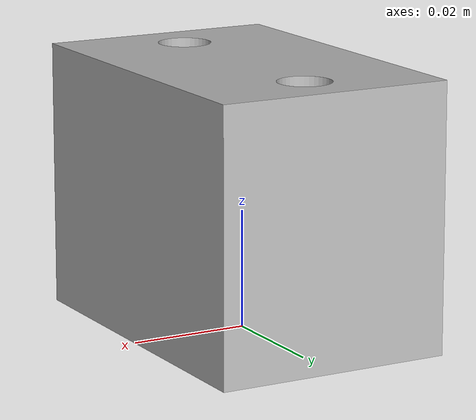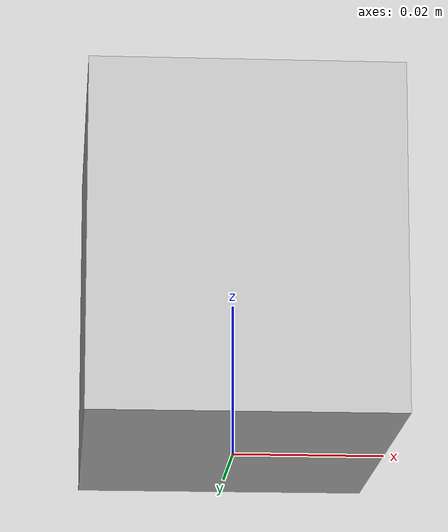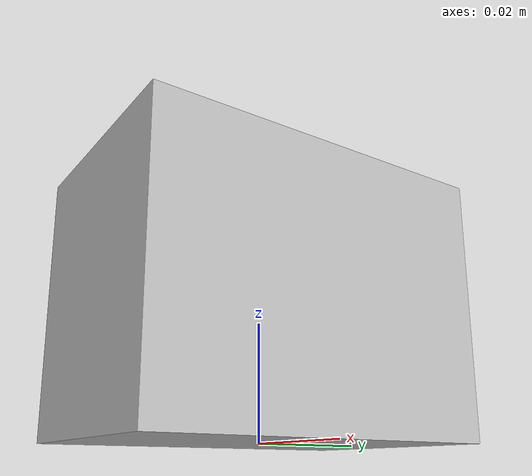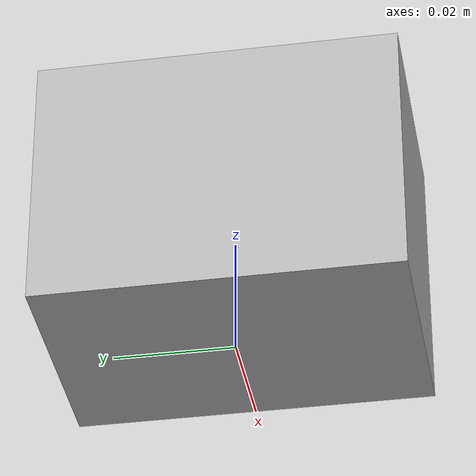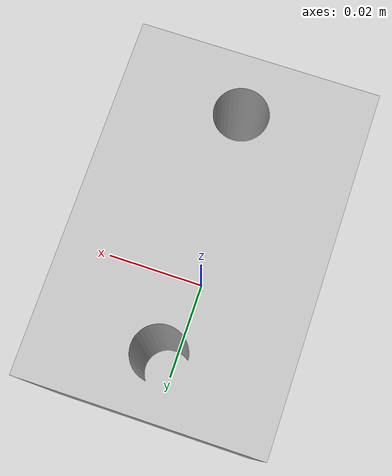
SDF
<?xml version='1.0'?>
<sdf version='1.6'>
  <model name="Bolt_holder">
<static>true</static>
<link name= "bolt_holder_link">
<collision name= "bolt holder collision">
 <geometry>
   <mesh>
     <uri>model://Bolt_holder/meshes/Bolt_holder.obj</uri>
      <scale> 1 1 1 </scale>
   </mesh>
</geometry>

</collision>
<visual name = "visual bearing">
  <geometry>
   <mesh>
     <uri>model://Bolt_holder/meshes/Bolt_holder.obj</uri>
      <scale> 1 1 1 </scale>
   </mesh>
</geometry>
</visual>
</link>
  </model>
</sdf>
